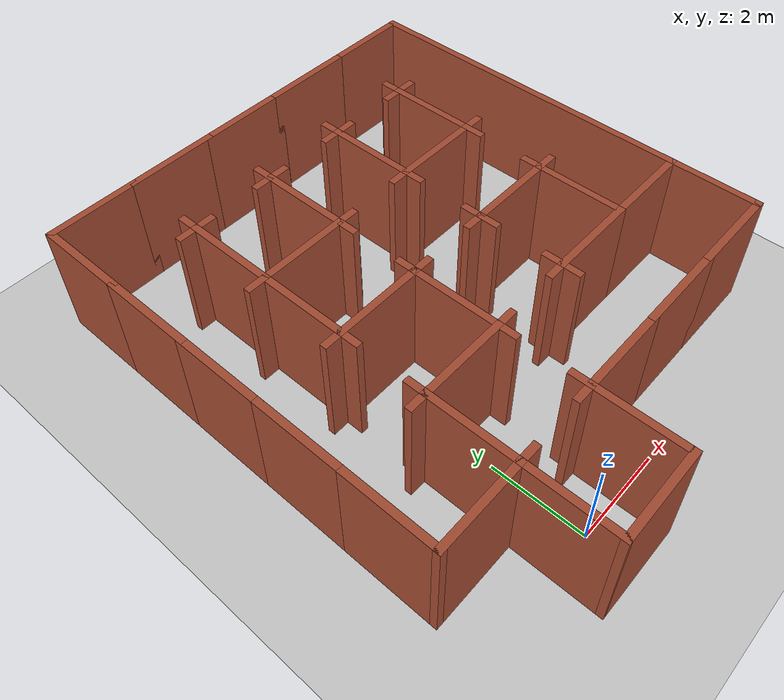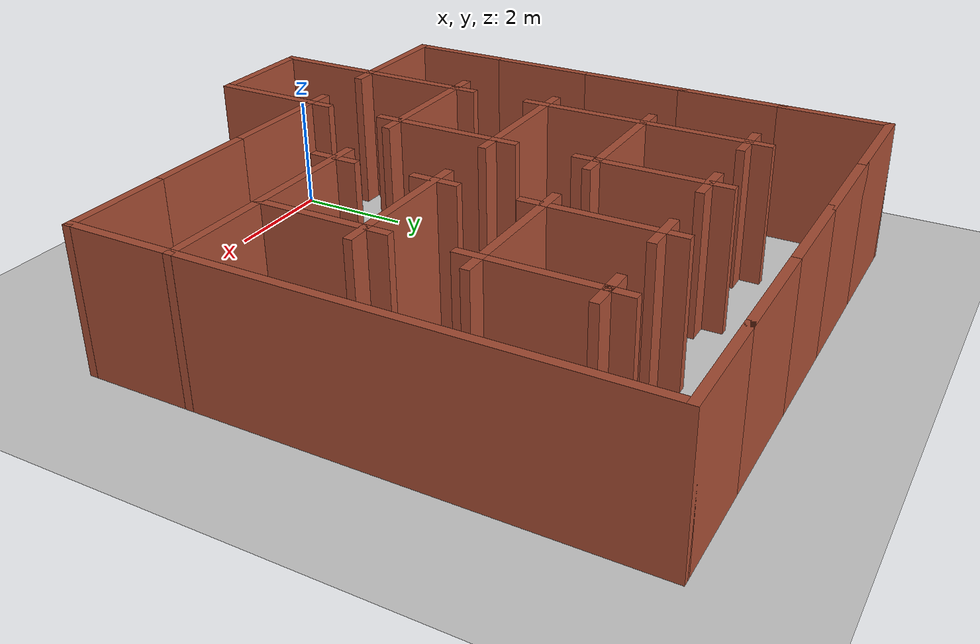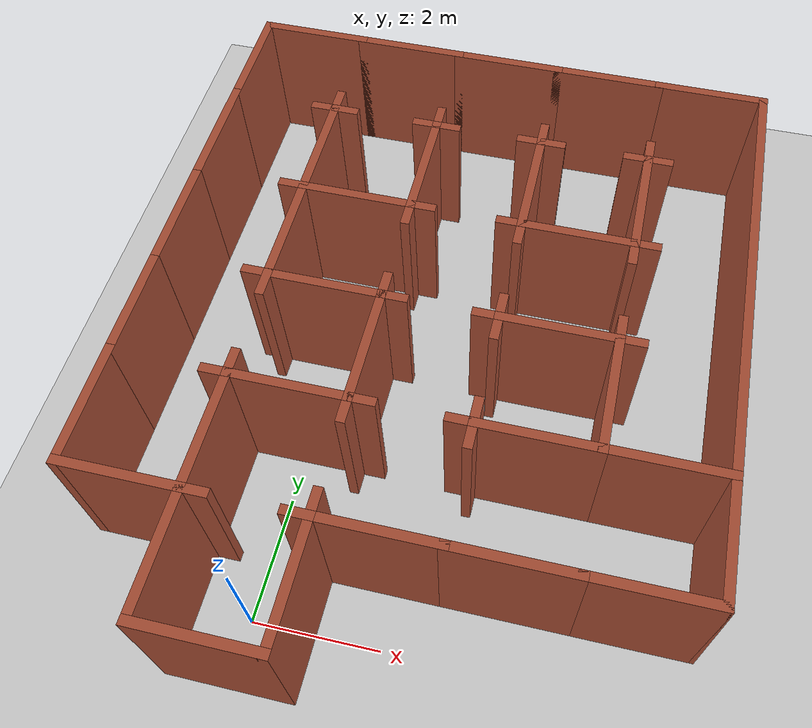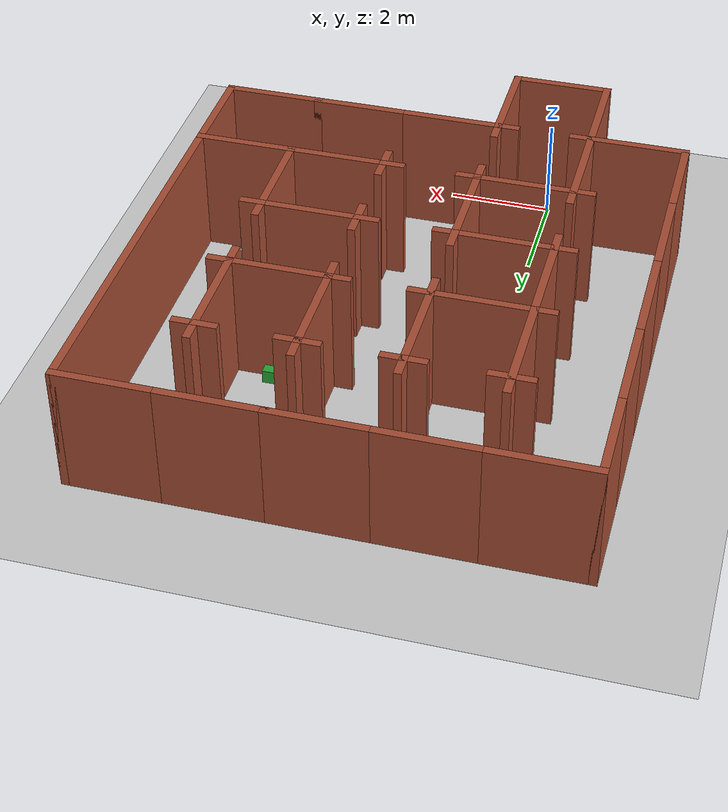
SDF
<?xml version="1.0"?>
<sdf version="1.6">
  <world name="default">

    <include>
      <uri>model://ground_plane</uri>
    </include>

    <include>
      <uri>model://sun</uri>
    </include>

    <scene>
      <shadows>false</shadows>
    </scene>

    <gui fullscreen='0'>
      <camera name='user_camera'>
        <pose frame=''>0.319654 -0.235002 9.29441 0 1.5138 0.009599</pose>
        <view_controller>orbit</view_controller>
        <projection_type>perspective</projection_type>
      </camera>
    </gui>

    <physics type="ode">
      <real_time_update_rate>1000.0</real_time_update_rate>
      <max_step_size>0.001</max_step_size>
      <real_time_factor>1</real_time_factor>
      <ode>
        <solver>
          <type>quick</type>
          <iters>150</iters>
          <precon_iters>0</precon_iters>
          <sor>1.400000</sor>
          <use_dynamic_moi_rescaling>1</use_dynamic_moi_rescaling>
        </solver>
        <constraints>
          <cfm>0.00001</cfm>
          <erp>0.2</erp>
          <contact_max_correcting_vel>2000.000000</contact_max_correcting_vel>
          <contact_surface_layer>0.01000</contact_surface_layer>
        </constraints>
      </ode>
    </physics>

    <model name="turtlebot3_floating_room">
      <static>1</static>
      <include>
        <uri>model://turtlebot3_floating_room</uri>
      </include>
    </model>

  </world>
</sdf>

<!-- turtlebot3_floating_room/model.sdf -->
<sdf version='1.7'>
  <model name='Floating_Room'>
    <pose>1.85013 4.625 0 0 -0 0</pose>
    <link name='Wall_104'>
      <collision name='Wall_104_Collision'>
        <geometry>
          <box>
            <size>2 0.15 2.5</size>
          </box>
        </geometry>
        <pose>0 0 1.25 0 -0 0</pose>
      </collision>
      <visual name='Wall_104_Visual'>
        <pose>0 0 1.25 0 -0 0</pose>
        <geometry>
          <box>
            <size>2 0.15 2.5</size>
          </box>
        </geometry>
        <material>
          <script>
            <uri>file://media/materials/scripts/gazebo.material</uri>
            <name>Gazebo/Bricks</name>
          </script>
          <ambient>1 1 1 1</ambient>
        </material>
        <meta>
          <layer>0</layer>
        </meta>
      </visual>
      <pose>2.77989 2.77748 0 0 -0 -1.5708</pose>
    </link>
    <link name='Wall_105'>
      <collision name='Wall_105_Collision'>
        <geometry>
          <box>
            <size>2 0.15 2.5</size>
          </box>
        </geometry>
        <pose>0 0 1.25 0 -0 0</pose>
      </collision>
      <visual name='Wall_105_Visual'>
        <pose>0 0 1.25 0 -0 0</pose>
        <geometry>
          <box>
            <size>2 0.15 2.5</size>
          </box>
        </geometry>
        <material>
          <script>
            <uri>file://media/materials/scripts/gazebo.material</uri>
            <name>Gazebo/Bricks</name>
          </script>
          <ambient>1 1 1 1</ambient>
        </material>
        <meta>
          <layer>0</layer>
        </meta>
      </visual>
      <pose>1.85489 1.85248 0 0 -0 3.14159</pose>
    </link>
    <link name='Wall_106'>
      <collision name='Wall_106_Collision'>
        <geometry>
          <box>
            <size>2 0.15 2.5</size>
          </box>
        </geometry>
        <pose>0 0 1.25 0 -0 0</pose>
      </collision>
      <visual name='Wall_106_Visual'>
        <pose>0 0 1.25 0 -0 0</pose>
        <geometry>
          <box>
            <size>2 0.15 2.5</size>
          </box>
        </geometry>
        <material>
          <script>
            <uri>file://media/materials/scripts/gazebo.material</uri>
            <name>Gazebo/Bricks</name>
          </script>
          <ambient>1 1 1 1</ambient>
        </material>
        <meta>
          <layer>0</layer>
        </meta>
      </visual>
      <pose>0.929887 2.77748 0 0 -0 1.5708</pose>
    </link>
    <link name='Wall_108'>
      <collision name='Wall_108_Collision'>
        <geometry>
          <box>
            <size>0.5 0.15 2.5</size>
          </box>
        </geometry>
        <pose>0 0 1.25 0 -0 0</pose>
      </collision>
      <visual name='Wall_108_Visual'>
        <pose>0 0 1.25 0 -0 0</pose>
        <geometry>
          <box>
            <size>0.5 0.15 2.5</size>
          </box>
        </geometry>
        <material>
          <script>
            <uri>file://media/materials/scripts/gazebo.material</uri>
            <name>Gazebo/Bricks</name>
          </script>
          <ambient>1 1 1 1</ambient>
        </material>
        <meta>
          <layer>0</layer>
        </meta>
      </visual>
      <pose>-0.925131 -2.025 0 0 -0 -1.5708</pose>
    </link>
    <link name='Wall_11'>
      <collision name='Wall_11_Collision'>
        <geometry>
          <box>
            <size>0.5 0.15 2.5</size>
          </box>
        </geometry>
        <pose>0 0 1.25 0 -0 0</pose>
      </collision>
      <visual name='Wall_11_Visual'>
        <pose>0 0 1.25 0 -0 0</pose>
        <geometry>
          <box>
            <size>0.5 0.15 2.5</size>
          </box>
        </geometry>
        <material>
          <script>
            <uri>file://media/materials/scripts/gazebo.material</uri>
            <name>Gazebo/Bricks</name>
          </script>
          <ambient>1 1 1 1</ambient>
        </material>
        <meta>
          <layer>0</layer>
        </meta>
      </visual>
      <pose>-2.60013 -3.7 0 0 -0 0</pose>
    </link>
    <link name='Wall_110'>
      <collision name='Wall_110_Collision'>
        <geometry>
          <box>
            <size>0.5 0.15 2.5</size>
          </box>
        </geometry>
        <pose>0 0 1.25 0 -0 0</pose>
      </collision>
      <visual name='Wall_110_Visual'>
        <pose>0 0 1.25 0 -0 0</pose>
        <geometry>
          <box>
            <size>0.5 0.15 2.5</size>
          </box>
        </geometry>
        <material>
          <script>
            <uri>file://media/materials/scripts/gazebo.material</uri>
            <name>Gazebo/Bricks</name>
          </script>
          <ambient>1 1 1 1</ambient>
        </material>
        <meta>
          <layer>0</layer>
        </meta>
      </visual>
      <pose>-0.925131 -3.525 0 0 -0 1.5708</pose>
    </link>
    <link name='Wall_112'>
      <collision name='Wall_112_Collision'>
        <geometry>
          <box>
            <size>0.5 0.15 2.5</size>
          </box>
        </geometry>
        <pose>0 0 1.25 0 -0 0</pose>
      </collision>
      <visual name='Wall_112_Visual'>
        <pose>0 0 1.25 0 -0 0</pose>
        <geometry>
          <box>
            <size>0.5 0.15 2.5</size>
          </box>
        </geometry>
        <material>
          <script>
            <uri>file://media/materials/scripts/gazebo.material</uri>
            <name>Gazebo/Bricks</name>
          </script>
          <ambient>1 1 1 1</ambient>
        </material>
        <meta>
          <layer>0</layer>
        </meta>
      </visual>
      <pose>0.925132 -2.02634 0 0 -0 -1.5708</pose>
    </link>
    <link name='Wall_114'>
      <collision name='Wall_114_Collision'>
        <geometry>
          <box>
            <size>0.5 0.15 2.5</size>
          </box>
        </geometry>
        <pose>0 0 1.25 0 -0 0</pose>
      </collision>
      <visual name='Wall_114_Visual'>
        <pose>0 0 1.25 0 -0 0</pose>
        <geometry>
          <box>
            <size>0.5 0.15 2.5</size>
          </box>
        </geometry>
        <material>
          <script>
            <uri>file://media/materials/scripts/gazebo.material</uri>
            <name>Gazebo/Bricks</name>
          </script>
          <ambient>1 1 1 1</ambient>
        </material>
        <meta>
          <layer>0</layer>
        </meta>
      </visual>
      <pose>0.925132 -1.67634 0 0 -0 1.5708</pose>
    </link>
    <link name='Wall_116'>
      <collision name='Wall_116_Collision'>
        <geometry>
          <box>
            <size>0.5 0.15 2.5</size>
          </box>
        </geometry>
        <pose>0 0 1.25 0 -0 0</pose>
      </collision>
      <visual name='Wall_116_Visual'>
        <pose>0 0 1.25 0 -0 0</pose>
        <geometry>
          <box>
            <size>0.5 0.15 2.5</size>
          </box>
        </geometry>
        <material>
          <script>
            <uri>file://media/materials/scripts/gazebo.material</uri>
            <name>Gazebo/Bricks</name>
          </script>
          <ambient>1 1 1 1</ambient>
        </material>
        <meta>
          <layer>0</layer>
        </meta>
      </visual>
      <pose>0.750131 -1.85134 0 0 -0 3.14159</pose>
    </link>
    <link name='Wall_118'>
      <collision name='Wall_118_Collision'>
        <geometry>
          <box>
            <size>0.5 0.15 2.5</size>
          </box>
        </geometry>
        <pose>0 0 1.25 0 -0 0</pose>
      </collision>
      <visual name='Wall_118_Visual'>
        <pose>0 0 1.25 0 -0 0</pose>
        <geometry>
          <box>
            <size>0.5 0.15 2.5</size>
          </box>
        </geometry>
        <material>
          <script>
            <uri>file://media/materials/scripts/gazebo.material</uri>
            <name>Gazebo/Bricks</name>
          </script>
          <ambient>1 1 1 1</ambient>
        </material>
        <meta>
          <layer>0</layer>
        </meta>
      </visual>
      <pose>0.925132 -0.176341 0 0 -0 -1.5708</pose>
    </link>
    <link name='Wall_121'>
      <collision name='Wall_121_Collision'>
        <geometry>
          <box>
            <size>0.5 0.15 2.5</size>
          </box>
        </geometry>
        <pose>0 0 1.25 0 -0 0</pose>
      </collision>
      <visual name='Wall_121_Visual'>
        <pose>0 0 1.25 0 -0 0</pose>
        <geometry>
          <box>
            <size>0.5 0.15 2.5</size>
          </box>
        </geometry>
        <material>
          <script>
            <uri>file://media/materials/scripts/gazebo.material</uri>
            <name>Gazebo/Bricks</name>
          </script>
          <ambient>1 1 1 1</ambient>
        </material>
        <meta>
          <layer>0</layer>
        </meta>
      </visual>
      <pose>0.750131 -0.001341 0 0 -0 3.14159</pose>
    </link>
    <link name='Wall_123'>
      <collision name='Wall_123_Collision'>
        <geometry>
          <box>
            <size>0.5 0.15 2.5</size>
          </box>
        </geometry>
        <pose>0 0 1.25 0 -0 0</pose>
      </collision>
      <visual name='Wall_123_Visual'>
        <pose>0 0 1.25 0 -0 0</pose>
        <geometry>
          <box>
            <size>0.5 0.15 2.5</size>
          </box>
        </geometry>
        <material>
          <script>
            <uri>file://media/materials/scripts/gazebo.material</uri>
            <name>Gazebo/Bricks</name>
          </script>
          <ambient>1 1 1 1</ambient>
        </material>
        <meta>
          <layer>0</layer>
        </meta>
      </visual>
      <pose>0.925132 0.173659 0 0 -0 1.5708</pose>
    </link>
    <link name='Wall_125'>
      <collision name='Wall_125_Collision'>
        <geometry>
          <box>
            <size>0.5 0.15 2.5</size>
          </box>
        </geometry>
        <pose>0 0 1.25 0 -0 0</pose>
      </collision>
      <visual name='Wall_125_Visual'>
        <pose>0 0 1.25 0 -0 0</pose>
        <geometry>
          <box>
            <size>0.5 0.15 2.5</size>
          </box>
        </geometry>
        <material>
          <script>
            <uri>file://media/materials/scripts/gazebo.material</uri>
            <name>Gazebo/Bricks</name>
          </script>
          <ambient>1 1 1 1</ambient>
        </material>
        <meta>
          <layer>0</layer>
        </meta>
      </visual>
      <pose>2.77513 0.173659 0 0 -0 1.5708</pose>
    </link>
    <link name='Wall_127'>
      <collision name='Wall_127_Collision'>
        <geometry>
          <box>
            <size>0.5 0.15 2.5</size>
          </box>
        </geometry>
        <pose>0 0 1.25 0 -0 0</pose>
      </collision>
      <visual name='Wall_127_Visual'>
        <pose>0 0 1.25 0 -0 0</pose>
        <geometry>
          <box>
            <size>0.5 0.15 2.5</size>
          </box>
        </geometry>
        <material>
          <script>
            <uri>file://media/materials/scripts/gazebo.material</uri>
            <name>Gazebo/Bricks</name>
          </script>
          <ambient>1 1 1 1</ambient>
        </material>
        <meta>
          <layer>0</layer>
        </meta>
      </visual>
      <pose>2.95013 -0.001341 0 0 -0 0</pose>
    </link>
    <link name='Wall_129'>
      <collision name='Wall_129_Collision'>
        <geometry>
          <box>
            <size>0.5 0.15 2.5</size>
          </box>
        </geometry>
        <pose>0 0 1.25 0 -0 0</pose>
      </collision>
      <visual name='Wall_129_Visual'>
        <pose>0 0 1.25 0 -0 0</pose>
        <geometry>
          <box>
            <size>0.5 0.15 2.5</size>
          </box>
        </geometry>
        <material>
          <script>
            <uri>file://media/materials/scripts/gazebo.material</uri>
            <name>Gazebo/Bricks</name>
          </script>
          <ambient>1 1 1 1</ambient>
        </material>
        <meta>
          <layer>0</layer>
        </meta>
      </visual>
      <pose>-0.750131 -1.85 0 0 -0 0</pose>
    </link>
    <link name='Wall_13'>
      <collision name='Wall_13_Collision'>
        <geometry>
          <box>
            <size>2 0.15 2.5</size>
          </box>
        </geometry>
        <pose>0 0 1.25 0 -0 0</pose>
      </collision>
      <visual name='Wall_13_Visual'>
        <pose>0 0 1.25 0 -0 0</pose>
        <geometry>
          <box>
            <size>2 0.15 2.5</size>
          </box>
        </geometry>
        <material>
          <script>
            <uri>file://media/materials/scripts/gazebo.material</uri>
            <name>Gazebo/Bricks</name>
          </script>
          <ambient>1 1 1 1</ambient>
        </material>
        <meta>
          <layer>0</layer>
        </meta>
      </visual>
      <pose>-3.70013 -3.7 0 0 -0 3.14159</pose>
    </link>
    <link name='Wall_131'>
      <collision name='Wall_131_Collision'>
        <geometry>
          <box>
            <size>0.5 0.15 2.5</size>
          </box>
        </geometry>
        <pose>0 0 1.25 0 -0 0</pose>
      </collision>
      <visual name='Wall_131_Visual'>
        <pose>0 0 1.25 0 -0 0</pose>
        <geometry>
          <box>
            <size>0.5 0.15 2.5</size>
          </box>
        </geometry>
        <material>
          <script>
            <uri>file://media/materials/scripts/gazebo.material</uri>
            <name>Gazebo/Bricks</name>
          </script>
          <ambient>1 1 1 1</ambient>
        </material>
        <meta>
          <layer>0</layer>
        </meta>
      </visual>
      <pose>-0.750131 0 0 0 -0 0</pose>
    </link>
    <link name='Wall_133'>
      <collision name='Wall_133_Collision'>
        <geometry>
          <box>
            <size>0.5 0.15 2.5</size>
          </box>
        </geometry>
        <pose>0 0 1.25 0 -0 0</pose>
      </collision>
      <visual name='Wall_133_Visual'>
        <pose>0 0 1.25 0 -0 0</pose>
        <geometry>
          <box>
            <size>0.5 0.15 2.5</size>
          </box>
        </geometry>
        <material>
          <script>
            <uri>file://media/materials/scripts/gazebo.material</uri>
            <name>Gazebo/Bricks</name>
          </script>
          <ambient>1 1 1 1</ambient>
        </material>
        <meta>
          <layer>0</layer>
        </meta>
      </visual>
      <pose>-0.925131 0.175 0 0 -0 1.5708</pose>
    </link>
    <link name='Wall_135'>
      <collision name='Wall_135_Collision'>
        <geometry>
          <box>
            <size>0.5 0.15 2.5</size>
          </box>
        </geometry>
        <pose>0 0 1.25 0 -0 0</pose>
      </collision>
      <visual name='Wall_135_Visual'>
        <pose>0 0 1.25 0 -0 0</pose>
        <geometry>
          <box>
            <size>0.5 0.15 2.5</size>
          </box>
        </geometry>
        <material>
          <script>
            <uri>file://media/materials/scripts/gazebo.material</uri>
            <name>Gazebo/Bricks</name>
          </script>
          <ambient>1 1 1 1</ambient>
        </material>
        <meta>
          <layer>0</layer>
        </meta>
      </visual>
      <pose>-0.925131 1.675 0 0 -0 -1.5708</pose>
    </link>
    <link name='Wall_137'>
      <collision name='Wall_137_Collision'>
        <geometry>
          <box>
            <size>0.5 0.15 2.5</size>
          </box>
        </geometry>
        <pose>0 0 1.25 0 -0 0</pose>
      </collision>
      <visual name='Wall_137_Visual'>
        <pose>0 0 1.25 0 -0 0</pose>
        <geometry>
          <box>
            <size>0.5 0.15 2.5</size>
          </box>
        </geometry>
        <material>
          <script>
            <uri>file://media/materials/scripts/gazebo.material</uri>
            <name>Gazebo/Bricks</name>
          </script>
          <ambient>1 1 1 1</ambient>
        </material>
        <meta>
          <layer>0</layer>
        </meta>
      </visual>
      <pose>-0.750131 1.85 0 0 -0 0</pose>
    </link>
    <link name='Wall_139'>
      <collision name='Wall_139_Collision'>
        <geometry>
          <box>
            <size>0.5 0.15 2.5</size>
          </box>
        </geometry>
        <pose>0 0 1.25 0 -0 0</pose>
      </collision>
      <visual name='Wall_139_Visual'>
        <pose>0 0 1.25 0 -0 0</pose>
        <geometry>
          <box>
            <size>0.5 0.15 2.5</size>
          </box>
        </geometry>
        <material>
          <script>
            <uri>file://media/materials/scripts/gazebo.material</uri>
            <name>Gazebo/Bricks</name>
          </script>
          <ambient>1 1 1 1</ambient>
        </material>
        <meta>
          <layer>0</layer>
        </meta>
      </visual>
      <pose>0.754887 1.85248 0 0 -0 3.14159</pose>
    </link>
    <link name='Wall_141'>
      <collision name='Wall_141_Collision'>
        <geometry>
          <box>
            <size>0.5 0.15 2.5</size>
          </box>
        </geometry>
        <pose>0 0 1.25 0 -0 0</pose>
      </collision>
      <visual name='Wall_141_Visual'>
        <pose>0 0 1.25 0 -0 0</pose>
        <geometry>
          <box>
            <size>0.5 0.15 2.5</size>
          </box>
        </geometry>
        <material>
          <script>
            <uri>file://media/materials/scripts/gazebo.material</uri>
            <name>Gazebo/Bricks</name>
          </script>
          <ambient>1 1 1 1</ambient>
        </material>
        <meta>
          <layer>0</layer>
        </meta>
      </visual>
      <pose>0.929887 1.67748 0 0 -0 -1.5708</pose>
    </link>
    <link name='Wall_143'>
      <collision name='Wall_143_Collision'>
        <geometry>
          <box>
            <size>0.5 0.15 2.5</size>
          </box>
        </geometry>
        <pose>0 0 1.25 0 -0 0</pose>
      </collision>
      <visual name='Wall_143_Visual'>
        <pose>0 0 1.25 0 -0 0</pose>
        <geometry>
          <box>
            <size>0.5 0.15 2.5</size>
          </box>
        </geometry>
        <material>
          <script>
            <uri>file://media/materials/scripts/gazebo.material</uri>
            <name>Gazebo/Bricks</name>
          </script>
          <ambient>1 1 1 1</ambient>
        </material>
        <meta>
          <layer>0</layer>
        </meta>
      </visual>
      <pose>2.77989 1.67748 0 0 -0 -1.5708</pose>
    </link>
    <link name='Wall_145'>
      <collision name='Wall_145_Collision'>
        <geometry>
          <box>
            <size>0.5 0.15 2.5</size>
          </box>
        </geometry>
        <pose>0 0 1.25 0 -0 0</pose>
      </collision>
      <visual name='Wall_145_Visual'>
        <pose>0 0 1.25 0 -0 0</pose>
        <geometry>
          <box>
            <size>0.5 0.15 2.5</size>
          </box>
        </geometry>
        <material>
          <script>
            <uri>file://media/materials/scripts/gazebo.material</uri>
            <name>Gazebo/Bricks</name>
          </script>
          <ambient>1 1 1 1</ambient>
        </material>
        <meta>
          <layer>0</layer>
        </meta>
      </visual>
      <pose>2.95489 1.85248 0 0 -0 0</pose>
    </link>
    <link name='Wall_147'>
      <collision name='Wall_147_Collision'>
        <geometry>
          <box>
            <size>0.5 0.15 2.5</size>
          </box>
        </geometry>
        <pose>0 0 1.25 0 -0 0</pose>
      </collision>
      <visual name='Wall_147_Visual'>
        <pose>0 0 1.25 0 -0 0</pose>
        <geometry>
          <box>
            <size>0.5 0.15 2.5</size>
          </box>
        </geometry>
        <material>
          <script>
            <uri>file://media/materials/scripts/gazebo.material</uri>
            <name>Gazebo/Bricks</name>
          </script>
          <ambient>1 1 1 1</ambient>
        </material>
        <meta>
          <layer>0</layer>
        </meta>
      </visual>
      <pose>-0.750131 3.7 0 0 -0 0</pose>
    </link>
    <link name='Wall_149'>
      <collision name='Wall_149_Collision'>
        <geometry>
          <box>
            <size>0.5 0.15 2.5</size>
          </box>
        </geometry>
        <pose>0 0 1.25 0 -0 0</pose>
      </collision>
      <visual name='Wall_149_Visual'>
        <pose>0 0 1.25 0 -0 0</pose>
        <geometry>
          <box>
            <size>0.5 0.15 2.5</size>
          </box>
        </geometry>
        <material>
          <script>
            <uri>file://media/materials/scripts/gazebo.material</uri>
            <name>Gazebo/Bricks</name>
          </script>
          <ambient>1 1 1 1</ambient>
        </material>
        <meta>
          <layer>0</layer>
        </meta>
      </visual>
      <pose>-0.925131 3.875 0 0 -0 1.5708</pose>
    </link>
    <link name='Wall_15'>
      <collision name='Wall_15_Collision'>
        <geometry>
          <box>
            <size>2 0.15 2.5</size>
          </box>
        </geometry>
        <pose>0 0 1.25 0 -0 0</pose>
      </collision>
      <visual name='Wall_15_Visual'>
        <pose>0 0 1.25 0 -0 0</pose>
        <geometry>
          <box>
            <size>2 0.15 2.5</size>
          </box>
        </geometry>
        <material>
          <script>
            <uri>file://media/materials/scripts/gazebo.material</uri>
            <name>Gazebo/Bricks</name>
          </script>
          <ambient>1 1 1 1</ambient>
        </material>
        <meta>
          <layer>0</layer>
        </meta>
      </visual>
      <pose>-0.000131 -3.7 0 0 -0 0</pose>
    </link>
    <link name='Wall_151'>
      <collision name='Wall_151_Collision'>
        <geometry>
          <box>
            <size>0.5 0.15 2.5</size>
          </box>
        </geometry>
        <pose>0 0 1.25 0 -0 0</pose>
      </collision>
      <visual name='Wall_151_Visual'>
        <pose>0 0 1.25 0 -0 0</pose>
        <geometry>
          <box>
            <size>0.5 0.15 2.5</size>
          </box>
        </geometry>
        <material>
          <script>
            <uri>file://media/materials/scripts/gazebo.material</uri>
            <name>Gazebo/Bricks</name>
          </script>
          <ambient>1 1 1 1</ambient>
        </material>
        <meta>
          <layer>0</layer>
        </meta>
      </visual>
      <pose>-2.77513 3.875 0 0 -0 1.5708</pose>
    </link>
    <link name='Wall_155'>
      <collision name='Wall_155_Collision'>
        <geometry>
          <box>
            <size>0.5 0.15 2.5</size>
          </box>
        </geometry>
        <pose>0 0 1.25 0 -0 0</pose>
      </collision>
      <visual name='Wall_155_Visual'>
        <pose>0 0 1.25 0 -0 0</pose>
        <geometry>
          <box>
            <size>0.5 0.15 2.5</size>
          </box>
        </geometry>
        <material>
          <script>
            <uri>file://media/materials/scripts/gazebo.material</uri>
            <name>Gazebo/Bricks</name>
          </script>
          <ambient>1 1 1 1</ambient>
        </material>
        <meta>
          <layer>0</layer>
        </meta>
      </visual>
      <pose>-2.95013 3.7 0 0 -0 3.14159</pose>
    </link>
    <link name='Wall_161'>
      <collision name='Wall_161_Collision'>
        <geometry>
          <box>
            <size>0.5 0.15 2.5</size>
          </box>
        </geometry>
        <pose>0 0 1.25 0 -0 0</pose>
      </collision>
      <visual name='Wall_161_Visual'>
        <pose>0 0 1.25 0 -0 0</pose>
        <geometry>
          <box>
            <size>0.5 0.15 2.5</size>
          </box>
        </geometry>
        <material>
          <script>
            <uri>file://media/materials/scripts/gazebo.material</uri>
            <name>Gazebo/Bricks</name>
          </script>
          <ambient>1 1 1 1</ambient>
        </material>
        <meta>
          <layer>0</layer>
        </meta>
      </visual>
      <pose>-2.95013 1.85 0 0 -0 3.14159</pose>
    </link>
    <link name='Wall_163'>
      <collision name='Wall_163_Collision'>
        <geometry>
          <box>
            <size>0.5 0.15 2.5</size>
          </box>
        </geometry>
        <pose>0 0 1.25 0 -0 0</pose>
      </collision>
      <visual name='Wall_163_Visual'>
        <pose>0 0 1.25 0 -0 0</pose>
        <geometry>
          <box>
            <size>0.5 0.15 2.5</size>
          </box>
        </geometry>
        <material>
          <script>
            <uri>file://media/materials/scripts/gazebo.material</uri>
            <name>Gazebo/Bricks</name>
          </script>
          <ambient>1 1 1 1</ambient>
        </material>
        <meta>
          <layer>0</layer>
        </meta>
      </visual>
      <pose>-2.95013 0 0 0 -0 3.14159</pose>
    </link>
    <link name='Wall_165'>
      <collision name='Wall_165_Collision'>
        <geometry>
          <box>
            <size>0.5 0.15 2.5</size>
          </box>
        </geometry>
        <pose>0 0 1.25 0 -0 0</pose>
      </collision>
      <visual name='Wall_165_Visual'>
        <pose>0 0 1.25 0 -0 0</pose>
        <geometry>
          <box>
            <size>0.5 0.15 2.5</size>
          </box>
        </geometry>
        <material>
          <script>
            <uri>file://media/materials/scripts/gazebo.material</uri>
            <name>Gazebo/Bricks</name>
          </script>
          <ambient>1 1 1 1</ambient>
        </material>
        <meta>
          <layer>0</layer>
        </meta>
      </visual>
      <pose>-2.77513 -0.175 0 0 -0 -1.5708</pose>
    </link>
    <link name='Wall_167'>
      <collision name='Wall_167_Collision'>
        <geometry>
          <box>
            <size>0.5 0.15 2.5</size>
          </box>
        </geometry>
        <pose>0 0 1.25 0 -0 0</pose>
      </collision>
      <visual name='Wall_167_Visual'>
        <pose>0 0 1.25 0 -0 0</pose>
        <geometry>
          <box>
            <size>0.5 0.15 2.5</size>
          </box>
        </geometry>
        <material>
          <script>
            <uri>file://media/materials/scripts/gazebo.material</uri>
            <name>Gazebo/Bricks</name>
          </script>
          <ambient>1 1 1 1</ambient>
        </material>
        <meta>
          <layer>0</layer>
        </meta>
      </visual>
      <pose>-2.77513 -1.675 0 0 -0 1.5708</pose>
    </link>
    <link name='Wall_169'>
      <collision name='Wall_169_Collision'>
        <geometry>
          <box>
            <size>0.5 0.15 2.5</size>
          </box>
        </geometry>
        <pose>0 0 1.25 0 -0 0</pose>
      </collision>
      <visual name='Wall_169_Visual'>
        <pose>0 0 1.25 0 -0 0</pose>
        <geometry>
          <box>
            <size>0.5 0.15 2.5</size>
          </box>
        </geometry>
        <material>
          <script>
            <uri>file://media/materials/scripts/gazebo.material</uri>
            <name>Gazebo/Bricks</name>
          </script>
          <ambient>1 1 1 1</ambient>
        </material>
        <meta>
          <layer>0</layer>
        </meta>
      </visual>
      <pose>-2.95013 -1.85 0 0 -0 3.14159</pose>
    </link>
    <link name='Wall_17'>
      <collision name='Wall_17_Collision'>
        <geometry>
          <box>
            <size>2 0.15 2.5</size>
          </box>
        </geometry>
        <pose>0 0 1.25 0 -0 0</pose>
      </collision>
      <visual name='Wall_17_Visual'>
        <pose>0 0 1.25 0 -0 0</pose>
        <geometry>
          <box>
            <size>2 0.15 2.5</size>
          </box>
        </geometry>
        <material>
          <script>
            <uri>file://media/materials/scripts/gazebo.material</uri>
            <name>Gazebo/Bricks</name>
          </script>
          <ambient>1 1 1 1</ambient>
        </material>
        <meta>
          <layer>0</layer>
        </meta>
      </visual>
      <pose>1.84987 -3.7 0 0 -0 0</pose>
    </link>
    <link name='Wall_172'>
      <collision name='Wall_172_Collision'>
        <geometry>
          <box>
            <size>0.5 0.15 2.5</size>
          </box>
        </geometry>
        <pose>0 0 1.25 0 -0 0</pose>
      </collision>
      <visual name='Wall_172_Visual'>
        <pose>0 0 1.25 0 -0 0</pose>
        <geometry>
          <box>
            <size>0.5 0.15 2.5</size>
          </box>
        </geometry>
        <material>
          <script>
            <uri>file://media/materials/scripts/gazebo.material</uri>
            <name>Gazebo/Bricks</name>
          </script>
          <ambient>1 1 1 1</ambient>
        </material>
        <meta>
          <layer>0</layer>
        </meta>
      </visual>
      <pose>0.754887 3.70248 0 0 -0 3.14159</pose>
    </link>
    <link name='Wall_174'>
      <collision name='Wall_174_Collision'>
        <geometry>
          <box>
            <size>0.5 0.15 2.5</size>
          </box>
        </geometry>
        <pose>0 0 1.25 0 -0 0</pose>
      </collision>
      <visual name='Wall_174_Visual'>
        <pose>0 0 1.25 0 -0 0</pose>
        <geometry>
          <box>
            <size>0.5 0.15 2.5</size>
          </box>
        </geometry>
        <material>
          <script>
            <uri>file://media/materials/scripts/gazebo.material</uri>
            <name>Gazebo/Bricks</name>
          </script>
          <ambient>1 1 1 1</ambient>
        </material>
        <meta>
          <layer>0</layer>
        </meta>
      </visual>
      <pose>0.929887 3.87748 0 0 -0 1.5708</pose>
    </link>
    <link name='Wall_176'>
      <collision name='Wall_176_Collision'>
        <geometry>
          <box>
            <size>0.5 0.15 2.5</size>
          </box>
        </geometry>
        <pose>0 0 1.25 0 -0 0</pose>
      </collision>
      <visual name='Wall_176_Visual'>
        <pose>0 0 1.25 0 -0 0</pose>
        <geometry>
          <box>
            <size>0.5 0.15 2.5</size>
          </box>
        </geometry>
        <material>
          <script>
            <uri>file://media/materials/scripts/gazebo.material</uri>
            <name>Gazebo/Bricks</name>
          </script>
          <ambient>1 1 1 1</ambient>
        </material>
        <meta>
          <layer>0</layer>
        </meta>
      </visual>
      <pose>1.10489 3.70248 0 0 -0 0</pose>
    </link>
    <link name='Wall_178'>
      <collision name='Wall_178_Collision'>
        <geometry>
          <box>
            <size>0.5 0.15 2.5</size>
          </box>
        </geometry>
        <pose>0 0 1.25 0 -0 0</pose>
      </collision>
      <visual name='Wall_178_Visual'>
        <pose>0 0 1.25 0 -0 0</pose>
        <geometry>
          <box>
            <size>0.5 0.15 2.5</size>
          </box>
        </geometry>
        <material>
          <script>
            <uri>file://media/materials/scripts/gazebo.material</uri>
            <name>Gazebo/Bricks</name>
          </script>
          <ambient>1 1 1 1</ambient>
        </material>
        <meta>
          <layer>0</layer>
        </meta>
      </visual>
      <pose>2.60489 3.70248 0 0 -0 3.14159</pose>
    </link>
    <link name='Wall_180'>
      <collision name='Wall_180_Collision'>
        <geometry>
          <box>
            <size>0.5 0.15 2.5</size>
          </box>
        </geometry>
        <pose>0 0 1.25 0 -0 0</pose>
      </collision>
      <visual name='Wall_180_Visual'>
        <pose>0 0 1.25 0 -0 0</pose>
        <geometry>
          <box>
            <size>0.5 0.15 2.5</size>
          </box>
        </geometry>
        <material>
          <script>
            <uri>file://media/materials/scripts/gazebo.material</uri>
            <name>Gazebo/Bricks</name>
          </script>
          <ambient>1 1 1 1</ambient>
        </material>
        <meta>
          <layer>0</layer>
        </meta>
      </visual>
      <pose>2.77989 3.87748 0 0 -0 1.5708</pose>
    </link>
    <link name='Wall_182'>
      <collision name='Wall_182_Collision'>
        <geometry>
          <box>
            <size>0.5 0.15 2.5</size>
          </box>
        </geometry>
        <pose>0 0 1.25 0 -0 0</pose>
      </collision>
      <visual name='Wall_182_Visual'>
        <pose>0 0 1.25 0 -0 0</pose>
        <geometry>
          <box>
            <size>0.5 0.15 2.5</size>
          </box>
        </geometry>
        <material>
          <script>
            <uri>file://media/materials/scripts/gazebo.material</uri>
            <name>Gazebo/Bricks</name>
          </script>
          <ambient>1 1 1 1</ambient>
        </material>
        <meta>
          <layer>0</layer>
        </meta>
      </visual>
      <pose>2.95489 3.70248 0 0 -0 0</pose>
    </link>
    <link name='Wall_186'>
      <collision name='Wall_186_Collision'>
        <geometry>
          <box>
            <size>2 0.15 2.5</size>
          </box>
        </geometry>
        <pose>0 0 1.25 0 -0 0</pose>
      </collision>
      <visual name='Wall_186_Visual'>
        <pose>0 0 1.25 0 -0 0</pose>
        <geometry>
          <box>
            <size>2 0.15 2.5</size>
          </box>
        </geometry>
        <material>
          <script>
            <uri>file://media/materials/scripts/gazebo.material</uri>
            <name>Gazebo/Bricks</name>
          </script>
          <ambient>1 1 1 1</ambient>
        </material>
        <meta>
          <layer>0</layer>
        </meta>
      </visual>
      <pose>-2.77513 2.775 0 0 -0 -1.5708</pose>
    </link>
    <link name='Wall_188'>
      <collision name='Wall_188_Collision'>
        <geometry>
          <box>
            <size>0.5 0.15 2.5</size>
          </box>
        </geometry>
        <pose>0 0 1.25 0 -0 0</pose>
      </collision>
      <visual name='Wall_188_Visual'>
        <pose>0 0 1.25 0 -0 0</pose>
        <geometry>
          <box>
            <size>0.5 0.15 2.5</size>
          </box>
        </geometry>
        <material>
          <script>
            <uri>file://media/materials/scripts/gazebo.material</uri>
            <name>Gazebo/Bricks</name>
          </script>
          <ambient>1 1 1 1</ambient>
        </material>
        <meta>
          <layer>0</layer>
        </meta>
      </visual>
      <pose>-2.60013 3.7 0 0 -0 0</pose>
    </link>
    <link name='Wall_19'>
      <collision name='Wall_19_Collision'>
        <geometry>
          <box>
            <size>2 0.15 2.5</size>
          </box>
        </geometry>
        <pose>0 0 1.25 0 -0 0</pose>
      </collision>
      <visual name='Wall_19_Visual'>
        <pose>0 0 1.25 0 -0 0</pose>
        <geometry>
          <box>
            <size>2 0.15 2.5</size>
          </box>
        </geometry>
        <material>
          <script>
            <uri>file://media/materials/scripts/gazebo.material</uri>
            <name>Gazebo/Bricks</name>
          </script>
          <ambient>1 1 1 1</ambient>
        </material>
        <meta>
          <layer>0</layer>
        </meta>
      </visual>
      <pose>3.69987 -3.7 0 0 -0 0</pose>
    </link>
    <link name='Wall_190'>
      <collision name='Wall_190_Collision'>
        <geometry>
          <box>
            <size>0.5 0.15 2.5</size>
          </box>
        </geometry>
        <pose>0 0 1.25 0 -0 0</pose>
      </collision>
      <visual name='Wall_190_Visual'>
        <pose>0 0 1.25 0 -0 0</pose>
        <geometry>
          <box>
            <size>0.5 0.15 2.5</size>
          </box>
        </geometry>
        <material>
          <script>
            <uri>file://media/materials/scripts/gazebo.material</uri>
            <name>Gazebo/Bricks</name>
          </script>
          <ambient>1 1 1 1</ambient>
        </material>
        <meta>
          <layer>0</layer>
        </meta>
      </visual>
      <pose>-1.10013 3.7 0 0 -0 3.14159</pose>
    </link>
    <link name='Wall_21'>
      <collision name='Wall_21_Collision'>
        <geometry>
          <box>
            <size>2 0.15 2.5</size>
          </box>
        </geometry>
        <pose>0 0 1.25 0 -0 0</pose>
      </collision>
      <visual name='Wall_21_Visual'>
        <pose>0 0 1.25 0 -0 0</pose>
        <geometry>
          <box>
            <size>2 0.15 2.5</size>
          </box>
        </geometry>
        <material>
          <script>
            <uri>file://media/materials/scripts/gazebo.material</uri>
            <name>Gazebo/Bricks</name>
          </script>
          <ambient>1 1 1 1</ambient>
        </material>
        <meta>
          <layer>0</layer>
        </meta>
      </visual>
      <pose>-4.62513 -2.775 0 0 -0 1.5708</pose>
    </link>
    <link name='Wall_23'>
      <collision name='Wall_23_Collision'>
        <geometry>
          <box>
            <size>2 0.15 2.5</size>
          </box>
        </geometry>
        <pose>0 0 1.25 0 -0 0</pose>
      </collision>
      <visual name='Wall_23_Visual'>
        <pose>0 0 1.25 0 -0 0</pose>
        <geometry>
          <box>
            <size>2 0.15 2.5</size>
          </box>
        </geometry>
        <material>
          <script>
            <uri>file://media/materials/scripts/gazebo.material</uri>
            <name>Gazebo/Bricks</name>
          </script>
          <ambient>1 1 1 1</ambient>
        </material>
        <meta>
          <layer>0</layer>
        </meta>
      </visual>
      <pose>-4.62513 -0.925 0 0 -0 1.5708</pose>
    </link>
    <link name='Wall_25'>
      <collision name='Wall_25_Collision'>
        <geometry>
          <box>
            <size>2 0.15 2.5</size>
          </box>
        </geometry>
        <pose>0 0 1.25 0 -0 0</pose>
      </collision>
      <visual name='Wall_25_Visual'>
        <pose>0 0 1.25 0 -0 0</pose>
        <geometry>
          <box>
            <size>2 0.15 2.5</size>
          </box>
        </geometry>
        <material>
          <script>
            <uri>file://media/materials/scripts/gazebo.material</uri>
            <name>Gazebo/Bricks</name>
          </script>
          <ambient>1 1 1 1</ambient>
        </material>
        <meta>
          <layer>0</layer>
        </meta>
      </visual>
      <pose>-4.62513 0.925 0 0 -0 1.5708</pose>
    </link>
    <link name='Wall_28'>
      <collision name='Wall_28_Collision'>
        <geometry>
          <box>
            <size>2 0.15 2.5</size>
          </box>
        </geometry>
        <pose>0 0 1.25 0 -0 0</pose>
      </collision>
      <visual name='Wall_28_Visual'>
        <pose>0 0 1.25 0 -0 0</pose>
        <geometry>
          <box>
            <size>2 0.15 2.5</size>
          </box>
        </geometry>
        <material>
          <script>
            <uri>file://media/materials/scripts/gazebo.material</uri>
            <name>Gazebo/Bricks</name>
          </script>
          <ambient>1 1 1 1</ambient>
        </material>
        <meta>
          <layer>0</layer>
        </meta>
      </visual>
      <pose>-4.62513 2.775 0 0 -0 1.5708</pose>
    </link>
    <link name='Wall_30'>
      <collision name='Wall_30_Collision'>
        <geometry>
          <box>
            <size>2 0.15 2.5</size>
          </box>
        </geometry>
        <pose>0 0 1.25 0 -0 0</pose>
      </collision>
      <visual name='Wall_30_Visual'>
        <pose>0 0 1.25 0 -0 0</pose>
        <geometry>
          <box>
            <size>2 0.15 2.5</size>
          </box>
        </geometry>
        <material>
          <script>
            <uri>file://media/materials/scripts/gazebo.material</uri>
            <name>Gazebo/Bricks</name>
          </script>
          <ambient>1 1 1 1</ambient>
        </material>
        <meta>
          <layer>0</layer>
        </meta>
      </visual>
      <pose>-4.62513 4.625 0 0 -0 1.5708</pose>
    </link>
    <link name='Wall_31'>
      <collision name='Wall_31_Collision'>
        <geometry>
          <box>
            <size>2 0.15 2.5</size>
          </box>
        </geometry>
        <pose>0 0 1.25 0 -0 0</pose>
      </collision>
      <visual name='Wall_31_Visual'>
        <pose>0 0 1.25 0 -0 0</pose>
        <geometry>
          <box>
            <size>2 0.15 2.5</size>
          </box>
        </geometry>
        <material>
          <script>
            <uri>file://media/materials/scripts/gazebo.material</uri>
            <name>Gazebo/Bricks</name>
          </script>
          <ambient>1 1 1 1</ambient>
        </material>
        <meta>
          <layer>0</layer>
        </meta>
      </visual>
      <pose>-3.70013 5.55 0 0 -0 0</pose>
    </link>
    <link name='Wall_32'>
      <collision name='Wall_32_Collision'>
        <geometry>
          <box>
            <size>2 0.15 2.5</size>
          </box>
        </geometry>
        <pose>0 0 1.25 0 -0 0</pose>
      </collision>
      <visual name='Wall_32_Visual'>
        <pose>0 0 1.25 0 -0 0</pose>
        <geometry>
          <box>
            <size>2 0.15 2.5</size>
          </box>
        </geometry>
        <material>
          <script>
            <uri>file://media/materials/scripts/gazebo.material</uri>
            <name>Gazebo/Bricks</name>
          </script>
          <ambient>1 1 1 1</ambient>
        </material>
        <meta>
          <layer>0</layer>
        </meta>
      </visual>
      <pose>-1.85013 5.55 0 0 -0 0</pose>
    </link>
    <link name='Wall_33'>
      <collision name='Wall_33_Collision'>
        <geometry>
          <box>
            <size>2 0.15 2.5</size>
          </box>
        </geometry>
        <pose>0 0 1.25 0 -0 0</pose>
      </collision>
      <visual name='Wall_33_Visual'>
        <pose>0 0 1.25 0 -0 0</pose>
        <geometry>
          <box>
            <size>2 0.15 2.5</size>
          </box>
        </geometry>
        <material>
          <script>
            <uri>file://media/materials/scripts/gazebo.material</uri>
            <name>Gazebo/Bricks</name>
          </script>
          <ambient>1 1 1 1</ambient>
        </material>
        <meta>
          <layer>0</layer>
        </meta>
      </visual>
      <pose>-0.000131 5.55 0 0 -0 0</pose>
    </link>
    <link name='Wall_34'>
      <collision name='Wall_34_Collision'>
        <geometry>
          <box>
            <size>2 0.15 2.5</size>
          </box>
        </geometry>
        <pose>0 0 1.25 0 -0 0</pose>
      </collision>
      <visual name='Wall_34_Visual'>
        <pose>0 0 1.25 0 -0 0</pose>
        <geometry>
          <box>
            <size>2 0.15 2.5</size>
          </box>
        </geometry>
        <material>
          <script>
            <uri>file://media/materials/scripts/gazebo.material</uri>
            <name>Gazebo/Bricks</name>
          </script>
          <ambient>1 1 1 1</ambient>
        </material>
        <meta>
          <layer>0</layer>
        </meta>
      </visual>
      <pose>1.84987 5.55 0 0 -0 0</pose>
    </link>
    <link name='Wall_35'>
      <collision name='Wall_35_Collision'>
        <geometry>
          <box>
            <size>2 0.15 2.5</size>
          </box>
        </geometry>
        <pose>0 0 1.25 0 -0 0</pose>
      </collision>
      <visual name='Wall_35_Visual'>
        <pose>0 0 1.25 0 -0 0</pose>
        <geometry>
          <box>
            <size>2 0.15 2.5</size>
          </box>
        </geometry>
        <material>
          <script>
            <uri>file://media/materials/scripts/gazebo.material</uri>
            <name>Gazebo/Bricks</name>
          </script>
          <ambient>1 1 1 1</ambient>
        </material>
        <meta>
          <layer>0</layer>
        </meta>
      </visual>
      <pose>3.69987 5.55 0 0 -0 0</pose>
    </link>
    <link name='Wall_36'>
      <collision name='Wall_36_Collision'>
        <geometry>
          <box>
            <size>9.4 0.15 2.5</size>
          </box>
        </geometry>
        <pose>0 0 1.25 0 -0 0</pose>
      </collision>
      <visual name='Wall_36_Visual'>
        <pose>0 0 1.25 0 -0 0</pose>
        <geometry>
          <box>
            <size>9.4 0.15 2.5</size>
          </box>
        </geometry>
        <material>
          <script>
            <uri>file://media/materials/scripts/gazebo.material</uri>
            <name>Gazebo/Bricks</name>
          </script>
          <ambient>1 1 1 1</ambient>
        </material>
        <meta>
          <layer>0</layer>
        </meta>
      </visual>
      <pose>4.62487 0.925 0 0 -0 -1.5708</pose>
    </link>
    <link name='Wall_4'>
      <collision name='Wall_4_Collision'>
        <geometry>
          <box>
            <size>2 0.15 2.5</size>
          </box>
        </geometry>
        <pose>0 0 1.25 0 -0 0</pose>
      </collision>
      <visual name='Wall_4_Visual'>
        <pose>0 0 1.25 0 -0 0</pose>
        <geometry>
          <box>
            <size>2 0.15 2.5</size>
          </box>
        </geometry>
        <material>
          <script>
            <uri>file://media/materials/scripts/gazebo.material</uri>
            <name>Gazebo/Bricks</name>
          </script>
          <ambient>1 1 1 1</ambient>
        </material>
        <meta>
          <layer>0</layer>
        </meta>
      </visual>
      <pose>-1.85013 -5.55 0 0 -0 0</pose>
    </link>
    <link name='Wall_6'>
      <collision name='Wall_6_Collision'>
        <geometry>
          <box>
            <size>2 0.15 2.5</size>
          </box>
        </geometry>
        <pose>0 0 1.25 0 -0 0</pose>
      </collision>
      <visual name='Wall_6_Visual'>
        <pose>0 0 1.25 0 -0 0</pose>
        <geometry>
          <box>
            <size>2 0.15 2.5</size>
          </box>
        </geometry>
        <material>
          <script>
            <uri>file://media/materials/scripts/gazebo.material</uri>
            <name>Gazebo/Bricks</name>
          </script>
          <ambient>1 1 1 1</ambient>
        </material>
        <meta>
          <layer>0</layer>
        </meta>
      </visual>
      <pose>-2.77513 -4.625 0 0 -0 1.5708</pose>
    </link>
    <link name='Wall_69'>
      <collision name='Wall_69_Collision'>
        <geometry>
          <box>
            <size>2 0.15 2.5</size>
          </box>
        </geometry>
        <pose>0 0 1.25 0 -0 0</pose>
      </collision>
      <visual name='Wall_69_Visual'>
        <pose>0 0 1.25 0 -0 0</pose>
        <geometry>
          <box>
            <size>2 0.15 2.5</size>
          </box>
        </geometry>
        <material>
          <script>
            <uri>file://media/materials/scripts/gazebo.material</uri>
            <name>Gazebo/Bricks</name>
          </script>
          <ambient>1 1 1 1</ambient>
        </material>
        <meta>
          <layer>0</layer>
        </meta>
      </visual>
      <pose>-2.77513 -2.775 0 0 -0 1.5708</pose>
    </link>
    <link name='Wall_70'>
      <collision name='Wall_70_Collision'>
        <geometry>
          <box>
            <size>2 0.15 2.5</size>
          </box>
        </geometry>
        <pose>0 0 1.25 0 -0 0</pose>
      </collision>
      <visual name='Wall_70_Visual'>
        <pose>0 0 1.25 0 -0 0</pose>
        <geometry>
          <box>
            <size>2 0.15 2.5</size>
          </box>
        </geometry>
        <material>
          <script>
            <uri>file://media/materials/scripts/gazebo.material</uri>
            <name>Gazebo/Bricks</name>
          </script>
          <ambient>1 1 1 1</ambient>
        </material>
        <meta>
          <layer>0</layer>
        </meta>
      </visual>
      <pose>-1.85013 -1.85 0 0 -0 0</pose>
    </link>
    <link name='Wall_71'>
      <collision name='Wall_71_Collision'>
        <geometry>
          <box>
            <size>2 0.15 2.5</size>
          </box>
        </geometry>
        <pose>0 0 1.25 0 -0 0</pose>
      </collision>
      <visual name='Wall_71_Visual'>
        <pose>0 0 1.25 0 -0 0</pose>
        <geometry>
          <box>
            <size>2 0.15 2.5</size>
          </box>
        </geometry>
        <material>
          <script>
            <uri>file://media/materials/scripts/gazebo.material</uri>
            <name>Gazebo/Bricks</name>
          </script>
          <ambient>1 1 1 1</ambient>
        </material>
        <meta>
          <layer>0</layer>
        </meta>
      </visual>
      <pose>-0.925131 -0.925 0 0 -0 1.5708</pose>
    </link>
    <link name='Wall_76'>
      <collision name='Wall_76_Collision'>
        <geometry>
          <box>
            <size>2 0.15 2.5</size>
          </box>
        </geometry>
        <pose>0 0 1.25 0 -0 0</pose>
      </collision>
      <visual name='Wall_76_Visual'>
        <pose>0 0 1.25 0 -0 0</pose>
        <geometry>
          <box>
            <size>2 0.15 2.5</size>
          </box>
        </geometry>
        <material>
          <script>
            <uri>file://media/materials/scripts/gazebo.material</uri>
            <name>Gazebo/Bricks</name>
          </script>
          <ambient>1 1 1 1</ambient>
        </material>
        <meta>
          <layer>0</layer>
        </meta>
      </visual>
      <pose>-1.85013 0 0 0 -0 3.14159</pose>
    </link>
    <link name='Wall_79'>
      <collision name='Wall_79_Collision'>
        <geometry>
          <box>
            <size>2 0.15 2.5</size>
          </box>
        </geometry>
        <pose>0 0 1.25 0 -0 0</pose>
      </collision>
      <visual name='Wall_79_Visual'>
        <pose>0 0 1.25 0 -0 0</pose>
        <geometry>
          <box>
            <size>2 0.15 2.5</size>
          </box>
        </geometry>
        <material>
          <script>
            <uri>file://media/materials/scripts/gazebo.material</uri>
            <name>Gazebo/Bricks</name>
          </script>
          <ambient>1 1 1 1</ambient>
        </material>
        <meta>
          <layer>0</layer>
        </meta>
      </visual>
      <pose>-2.77513 0.925 0 0 -0 1.5708</pose>
    </link>
    <link name='Wall_8'>
      <collision name='Wall_8_Collision'>
        <geometry>
          <box>
            <size>2 0.15 2.5</size>
          </box>
        </geometry>
        <pose>0 0 1.25 0 -0 0</pose>
      </collision>
      <visual name='Wall_8_Visual'>
        <pose>0 0 1.25 0 -0 0</pose>
        <geometry>
          <box>
            <size>2 0.15 2.5</size>
          </box>
        </geometry>
        <material>
          <script>
            <uri>file://media/materials/scripts/gazebo.material</uri>
            <name>Gazebo/Bricks</name>
          </script>
          <ambient>1 1 1 1</ambient>
        </material>
        <meta>
          <layer>0</layer>
        </meta>
      </visual>
      <pose>-0.925131 -4.625 0 0 -0 1.5708</pose>
    </link>
    <link name='Wall_80'>
      <collision name='Wall_80_Collision'>
        <geometry>
          <box>
            <size>2 0.15 2.5</size>
          </box>
        </geometry>
        <pose>0 0 1.25 0 -0 0</pose>
      </collision>
      <visual name='Wall_80_Visual'>
        <pose>0 0 1.25 0 -0 0</pose>
        <geometry>
          <box>
            <size>2 0.15 2.5</size>
          </box>
        </geometry>
        <material>
          <script>
            <uri>file://media/materials/scripts/gazebo.material</uri>
            <name>Gazebo/Bricks</name>
          </script>
          <ambient>1 1 1 1</ambient>
        </material>
        <meta>
          <layer>0</layer>
        </meta>
      </visual>
      <pose>-1.85013 1.85 0 0 -0 0</pose>
    </link>
    <link name='Wall_81'>
      <collision name='Wall_81_Collision'>
        <geometry>
          <box>
            <size>2 0.15 2.5</size>
          </box>
        </geometry>
        <pose>0 0 1.25 0 -0 0</pose>
      </collision>
      <visual name='Wall_81_Visual'>
        <pose>0 0 1.25 0 -0 0</pose>
        <geometry>
          <box>
            <size>2 0.15 2.5</size>
          </box>
        </geometry>
        <material>
          <script>
            <uri>file://media/materials/scripts/gazebo.material</uri>
            <name>Gazebo/Bricks</name>
          </script>
          <ambient>1 1 1 1</ambient>
        </material>
        <meta>
          <layer>0</layer>
        </meta>
      </visual>
      <pose>-0.925131 2.775 0 0 -0 1.5708</pose>
    </link>
    <link name='Wall_9'>
      <collision name='Wall_9_Collision'>
        <geometry>
          <box>
            <size>0.5 0.15 2.5</size>
          </box>
        </geometry>
        <pose>0 0 1.25 0 -0 0</pose>
      </collision>
      <visual name='Wall_9_Visual'>
        <pose>0 0 1.25 0 -0 0</pose>
        <geometry>
          <box>
            <size>0.5 0.15 2.5</size>
          </box>
        </geometry>
        <material>
          <script>
            <uri>file://media/materials/scripts/gazebo.material</uri>
            <name>Gazebo/Bricks</name>
          </script>
          <ambient>1 1 1 1</ambient>
        </material>
        <meta>
          <layer>0</layer>
        </meta>
      </visual>
      <pose>-1.10013 -3.7 0 0 -0 3.14159</pose>
    </link>
    <link name='Wall_93'>
      <collision name='Wall_93_Collision'>
        <geometry>
          <box>
            <size>2 0.15 2.5</size>
          </box>
        </geometry>
        <pose>0 0 1.25 0 -0 0</pose>
      </collision>
      <visual name='Wall_93_Visual'>
        <pose>0 0 1.25 0 -0 0</pose>
        <geometry>
          <box>
            <size>2 0.15 2.5</size>
          </box>
        </geometry>
        <material>
          <script>
            <uri>file://media/materials/scripts/gazebo.material</uri>
            <name>Gazebo/Bricks</name>
          </script>
          <ambient>1 1 1 1</ambient>
        </material>
        <meta>
          <layer>0</layer>
        </meta>
      </visual>
      <pose>1.85013 -0.001341 0 0 -0 0</pose>
    </link>
    <link name='Wall_95'>
      <collision name='Wall_95_Collision'>
        <geometry>
          <box>
            <size>2 0.15 2.5</size>
          </box>
        </geometry>
        <pose>0 0 1.25 0 -0 0</pose>
      </collision>
      <visual name='Wall_95_Visual'>
        <pose>0 0 1.25 0 -0 0</pose>
        <geometry>
          <box>
            <size>2 0.15 2.5</size>
          </box>
        </geometry>
        <material>
          <script>
            <uri>file://media/materials/scripts/gazebo.material</uri>
            <name>Gazebo/Bricks</name>
          </script>
          <ambient>1 1 1 1</ambient>
        </material>
        <meta>
          <layer>0</layer>
        </meta>
      </visual>
      <pose>2.77513 -0.926341 0 0 -0 -1.5708</pose>
    </link>
    <link name='Wall_96'>
      <collision name='Wall_96_Collision'>
        <geometry>
          <box>
            <size>2 0.15 2.5</size>
          </box>
        </geometry>
        <pose>0 0 1.25 0 -0 0</pose>
      </collision>
      <visual name='Wall_96_Visual'>
        <pose>0 0 1.25 0 -0 0</pose>
        <geometry>
          <box>
            <size>2 0.15 2.5</size>
          </box>
        </geometry>
        <material>
          <script>
            <uri>file://media/materials/scripts/gazebo.material</uri>
            <name>Gazebo/Bricks</name>
          </script>
          <ambient>1 1 1 1</ambient>
        </material>
        <meta>
          <layer>0</layer>
        </meta>
      </visual>
      <pose>3.70013 -1.85134 0 0 -0 0</pose>
    </link>
    <link name='Wall_98'>
      <collision name='Wall_98_Collision'>
        <geometry>
          <box>
            <size>2 0.15 2.5</size>
          </box>
        </geometry>
        <pose>0 0 1.25 0 -0 0</pose>
      </collision>
      <visual name='Wall_98_Visual'>
        <pose>0 0 1.25 0 -0 0</pose>
        <geometry>
          <box>
            <size>2 0.15 2.5</size>
          </box>
        </geometry>
        <material>
          <script>
            <uri>file://media/materials/scripts/gazebo.material</uri>
            <name>Gazebo/Bricks</name>
          </script>
          <ambient>1 1 1 1</ambient>
        </material>
        <meta>
          <layer>0</layer>
        </meta>
      </visual>
      <pose>1.85013 -1.85134 0 0 -0 3.14159</pose>
    </link>
    <link name='link_0'>
      <inertial>
        <mass>1</mass>
        <inertia>
          <ixx>0.166667</ixx>
          <ixy>0</ixy>
          <ixz>0</ixz>
          <iyy>0.166667</iyy>
          <iyz>0</iyz>
          <izz>0.166667</izz>
        </inertia>
        <pose>0.9 1 0 0 -0 0</pose>
      </inertial>
      <pose>0.9 1 0 0 -0 0</pose>
      <gravity>1</gravity>
      <self_collide>0</self_collide>
      <kinematic>0</kinematic>
      <enable_wind>0</enable_wind>
      <visual name='visual'>
        <pose>0.9 1 0 0 -0 0</pose>
        <geometry>
          <box>
            <size>0.75 0.25 0.5</size>
          </box>
        </geometry>
        <material>
          <lighting>1</lighting>
          <script>
            <uri>file://media/materials/scripts/gazebo.material</uri>
            <name>Gazebo/Green</name>
          </script>
          <shader type='pixel'>
            <normal_map>__default__</normal_map>
          </shader>
          <ambient>0 1 0 1</ambient>
          <diffuse>0 1 0 1</diffuse>
          <specular>0.01 0.01 0.01 1</specular>
          <emissive>0 0 0 1</emissive>
        </material>
        <transparency>0</transparency>
        <cast_shadows>1</cast_shadows>
      </visual>
      <collision name='collision'>
        <laser_retro>0</laser_retro>
        <max_contacts>10</max_contacts>
        <pose>0.9 1 0 0 -0 0</pose>
        <geometry>
          <box>
            <size>0.75 0.25 0.5</size>
          </box>
        </geometry>
        <surface>
          <friction>
            <ode>
              <mu>1</mu>
              <mu2>1</mu2>
              <fdir1>0 0 0</fdir1>
              <slip1>0</slip1>
              <slip2>0</slip2>
            </ode>
            <torsional>
              <coefficient>1</coefficient>
              <patch_radius>0</patch_radius>
              <surface_radius>0</surface_radius>
              <use_patch_radius>1</use_patch_radius>
              <ode>
                <slip>0</slip>
              </ode>
            </torsional>
          </friction>
          <bounce>
            <restitution_coefficient>0</restitution_coefficient>
            <threshold>1e+06</threshold>
          </bounce>
          <contact>
            <collide_without_contact>0</collide_without_contact>
            <collide_without_contact_bitmask>1</collide_without_contact_bitmask>
            <collide_bitmask>1</collide_bitmask>
            <ode>
              <soft_cfm>0</soft_cfm>
              <soft_erp>0.2</soft_erp>
              <kp>1e+13</kp>
              <kd>1</kd>
              <max_vel>0.01</max_vel>
              <min_depth>0</min_depth>
            </ode>
            <bullet>
              <split_impulse>1</split_impulse>
              <split_impulse_penetration_threshold>-0.01</split_impulse_penetration_threshold>
              <soft_cfm>0</soft_cfm>
              <soft_erp>0.2</soft_erp>
              <kp>1e+13</kp>
              <kd>1</kd>
            </bullet>
          </contact>
        </surface>
      </collision>
    </link>
    <static>1</static>
  </model>
</sdf>
